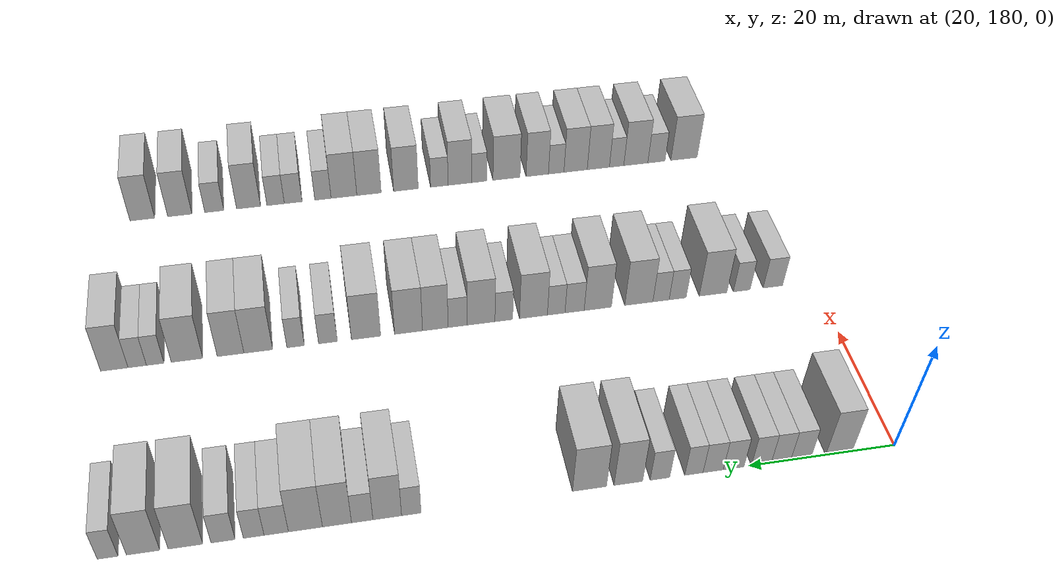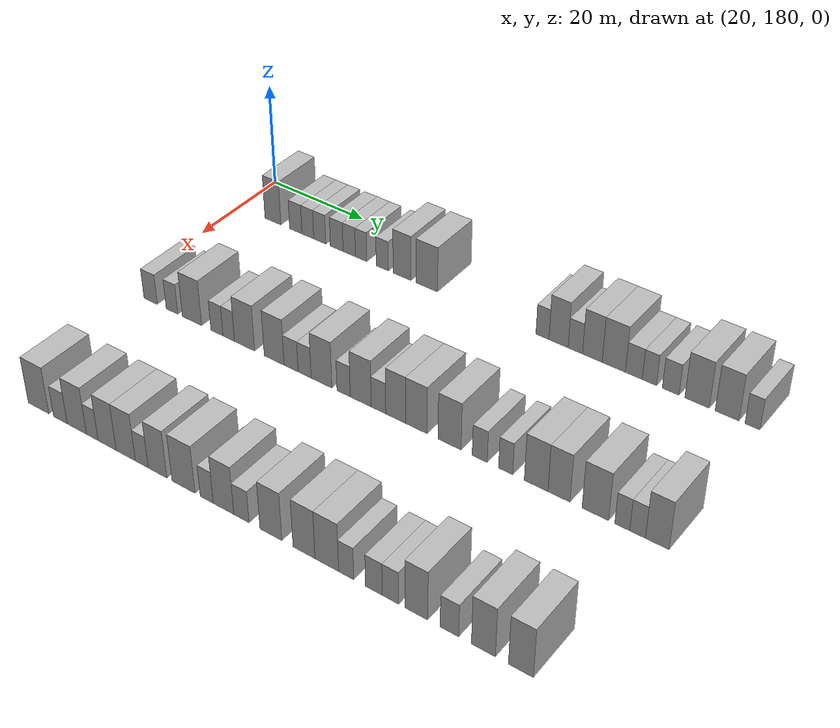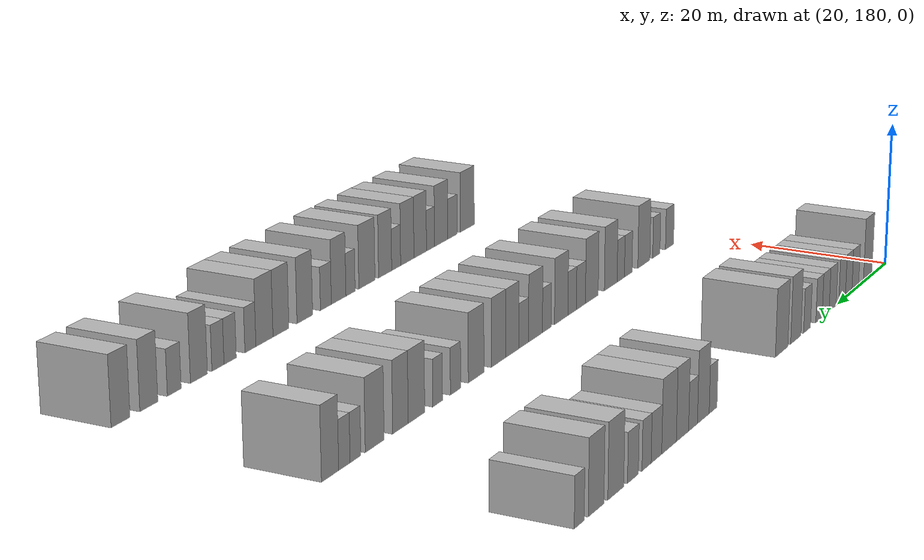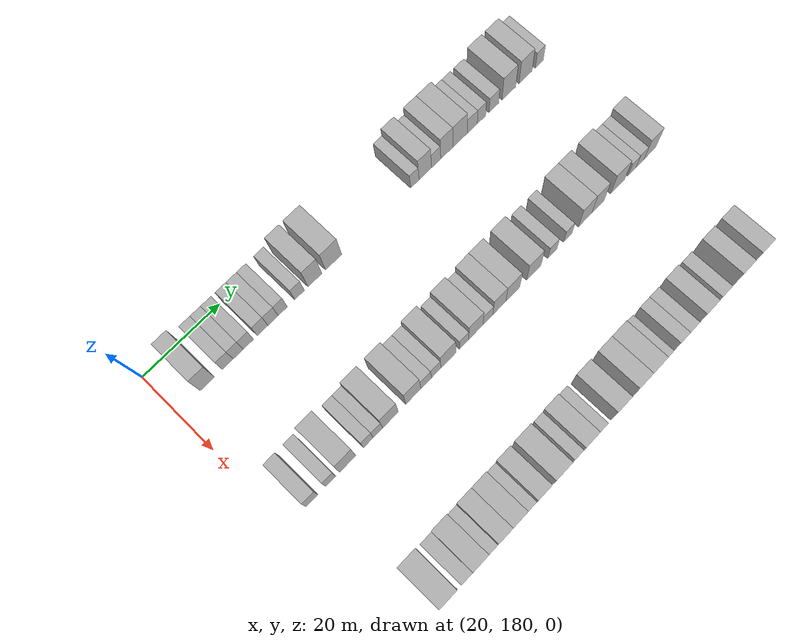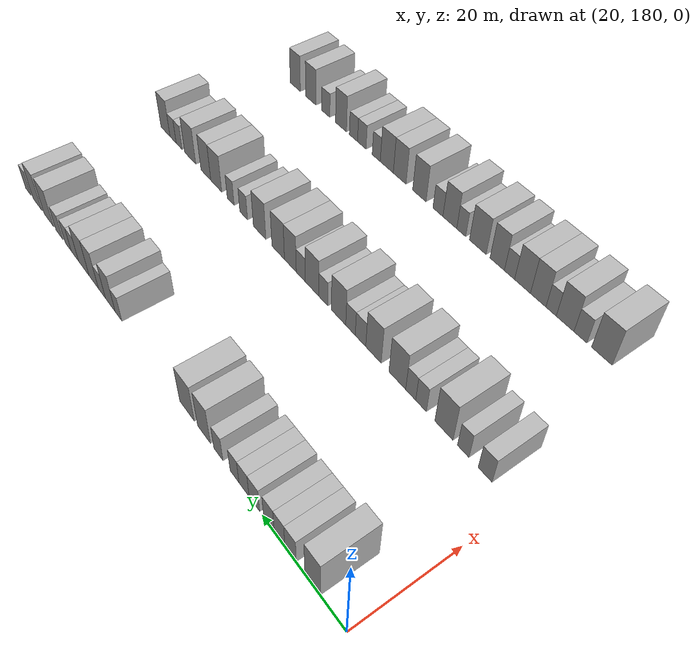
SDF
<sdf version="1.6">
 <world name="default">
  <model name="building_114">
   <static>1</static>
   <pose>25.0000 187.7259 0 0.000000 0.000000 0.000000</pose>
   <link name="link">
    <pose>0 0 4.50 0 0 0</pose>
    <collision name="collision"><geometry><box><size>10.0000 3.6436 9.0000</size></box></geometry></collision>
    <visual name="visual">
     <cast_shadows>0</cast_shadows>
     <geometry><box><size>10.0000 3.6436 9.0000</size></box></geometry>
     <material>
      <script>
       <uri>model://HANNAS_wall/materials/scripts</uri>
       <uri>model://HANNAS_wall/materials/textures</uri>
       <name>vrc/HANNAS_wall</name>
      </script>
     </material>
    </visual>
   </link>
  </model>
  <model name="building_115">
   <static>1</static>
   <pose>25.0000 192.9375 0 0.000000 0.000000 0.000000</pose>
   <link name="link">
    <pose>0 0 3.00 0 0 0</pose>
    <collision name="collision"><geometry><box><size>10.0000 2.7795 6.0000</size></box></geometry></collision>
    <visual name="visual">
     <cast_shadows>0</cast_shadows>
     <geometry><box><size>10.0000 2.7795 6.0000</size></box></geometry>
     <material>
      <script>
       <uri>model://HANNAS_wall/materials/scripts</uri>
       <uri>model://HANNAS_wall/materials/textures</uri>
       <name>vrc/HANNAS_wall</name>
      </script>
     </material>
    </visual>
   </link>
  </model>
  <model name="building_116">
   <static>1</static>
   <pose>25.0000 195.6456 0 0.000000 0.000000 0.000000</pose>
   <link name="link">
    <pose>0 0 3.00 0 0 0</pose>
    <collision name="collision"><geometry><box><size>10.0000 2.6369 6.0000</size></box></geometry></collision>
    <visual name="visual">
     <cast_shadows>0</cast_shadows>
     <geometry><box><size>10.0000 2.6369 6.0000</size></box></geometry>
     <material>
      <script>
       <uri>model://HANNAS_wall/materials/scripts</uri>
       <uri>model://HANNAS_wall/materials/textures</uri>
       <name>vrc/HANNAS_wall</name>
      </script>
     </material>
    </visual>
   </link>
  </model>
  <model name="building_117">
   <static>1</static>
   <pose>25.0000 198.3104 0 0.000000 0.000000 0.000000</pose>
   <link name="link">
    <pose>0 0 3.00 0 0 0</pose>
    <collision name="collision"><geometry><box><size>10.0000 2.6927 6.0000</size></box></geometry></collision>
    <visual name="visual">
     <cast_shadows>0</cast_shadows>
     <geometry><box><size>10.0000 2.6927 6.0000</size></box></geometry>
     <material>
      <script>
       <uri>model://HANNAS_wall/materials/scripts</uri>
       <uri>model://HANNAS_wall/materials/textures</uri>
       <name>vrc/HANNAS_wall</name>
      </script>
     </material>
    </visual>
   </link>
  </model>
  <model name="building_118">
   <static>1</static>
   <pose>25.0000 202.0530 0 0.000000 0.000000 0.000000</pose>
   <link name="link">
    <pose>0 0 3.00 0 0 0</pose>
    <collision name="collision"><geometry><box><size>10.0000 2.7925 6.0000</size></box></geometry></collision>
    <visual name="visual">
     <cast_shadows>0</cast_shadows>
     <geometry><box><size>10.0000 2.7925 6.0000</size></box></geometry>
     <material>
      <script>
       <uri>model://HANNAS_wall/materials/scripts</uri>
       <uri>model://HANNAS_wall/materials/textures</uri>
       <name>vrc/HANNAS_wall</name>
      </script>
     </material>
    </visual>
   </link>
  </model>
  <model name="building_119">
   <static>1</static>
   <pose>25.0000 204.8026 0 0.000000 0.000000 0.000000</pose>
   <link name="link">
    <pose>0 0 3.00 0 0 0</pose>
    <collision name="collision"><geometry><box><size>10.0000 2.7067 6.0000</size></box></geometry></collision>
    <visual name="visual">
     <cast_shadows>0</cast_shadows>
     <geometry><box><size>10.0000 2.7067 6.0000</size></box></geometry>
     <material>
      <script>
       <uri>model://HANNAS_wall/materials/scripts</uri>
       <uri>model://HANNAS_wall/materials/textures</uri>
       <name>vrc/HANNAS_wall</name>
      </script>
     </material>
    </visual>
   </link>
  </model>
  <model name="building_120">
   <static>1</static>
   <pose>25.0000 207.3754 0 0.000000 0.000000 0.000000</pose>
   <link name="link">
    <pose>0 0 3.00 0 0 0</pose>
    <collision name="collision"><geometry><box><size>10.0000 2.4390 6.0000</size></box></geometry></collision>
    <visual name="visual">
     <cast_shadows>0</cast_shadows>
     <geometry><box><size>10.0000 2.4390 6.0000</size></box></geometry>
     <material>
      <script>
       <uri>model://HANNAS_wall/materials/scripts</uri>
       <uri>model://HANNAS_wall/materials/textures</uri>
       <name>vrc/HANNAS_wall</name>
      </script>
     </material>
    </visual>
   </link>
  </model>
  <model name="building_121">
   <static>1</static>
   <pose>25.0000 211.8889 0 0.000000 0.000000 0.000000</pose>
   <link name="link">
    <pose>0 0 3.00 0 0 0</pose>
    <collision name="collision"><geometry><box><size>10.0000 2.5881 6.0000</size></box></geometry></collision>
    <visual name="visual">
     <cast_shadows>0</cast_shadows>
     <geometry><box><size>10.0000 2.5881 6.0000</size></box></geometry>
     <material>
      <script>
       <uri>model://HANNAS_wall/materials/scripts</uri>
       <uri>model://HANNAS_wall/materials/textures</uri>
       <name>vrc/HANNAS_wall</name>
      </script>
     </material>
    </visual>
   </link>
  </model>
  <model name="building_122">
   <static>1</static>
   <pose>25.0000 216.0663 0 0.000000 0.000000 0.000000</pose>
   <link name="link">
    <pose>0 0 4.50 0 0 0</pose>
    <collision name="collision"><geometry><box><size>10.0000 3.7667 9.0000</size></box></geometry></collision>
    <visual name="visual">
     <cast_shadows>0</cast_shadows>
     <geometry><box><size>10.0000 3.7667 9.0000</size></box></geometry>
     <material>
      <script>
       <uri>model://HANNAS_wall/materials/scripts</uri>
       <uri>model://HANNAS_wall/materials/textures</uri>
       <name>vrc/HANNAS_wall</name>
      </script>
     </material>
    </visual>
   </link>
  </model>
  <model name="building_123">
   <static>1</static>
   <pose>25.0000 221.1724 0 0.000000 0.000000 0.000000</pose>
   <link name="link">
    <pose>0 0 4.50 0 0 0</pose>
    <collision name="collision"><geometry><box><size>10.0000 4.4453 9.0000</size></box></geometry></collision>
    <visual name="visual">
     <cast_shadows>0</cast_shadows>
     <geometry><box><size>10.0000 4.4453 9.0000</size></box></geometry>
     <material>
      <script>
       <uri>model://HANNAS_wall/materials/scripts</uri>
       <uri>model://HANNAS_wall/materials/textures</uri>
       <name>vrc/HANNAS_wall</name>
      </script>
     </material>
    </visual>
   </link>
  </model>
  <model name="building_124">
   <static>1</static>
   <pose>25.0000 244.0759 0 0.000000 0.000000 0.000000</pose>
   <link name="link">
    <pose>0 0 3.00 0 0 0</pose>
    <collision name="collision"><geometry><box><size>10.0000 2.4540 6.0000</size></box></geometry></collision>
    <visual name="visual">
     <cast_shadows>0</cast_shadows>
     <geometry><box><size>10.0000 2.4540 6.0000</size></box></geometry>
     <material>
      <script>
       <uri>model://HANNAS_wall/materials/scripts</uri>
       <uri>model://HANNAS_wall/materials/textures</uri>
       <name>vrc/HANNAS_wall</name>
      </script>
     </material>
    </visual>
   </link>
  </model>
  <model name="building_125">
   <static>1</static>
   <pose>25.0000 247.1043 0 0.000000 0.000000 0.000000</pose>
   <link name="link">
    <pose>0 0 4.50 0 0 0</pose>
    <collision name="collision"><geometry><box><size>10.0000 3.6028 9.0000</size></box></geometry></collision>
    <visual name="visual">
     <cast_shadows>0</cast_shadows>
     <geometry><box><size>10.0000 3.6028 9.0000</size></box></geometry>
     <material>
      <script>
       <uri>model://HANNAS_wall/materials/scripts</uri>
       <uri>model://HANNAS_wall/materials/textures</uri>
       <name>vrc/HANNAS_wall</name>
      </script>
     </material>
    </visual>
   </link>
  </model>
  <model name="building_126">
   <static>1</static>
   <pose>25.0000 250.2439 0 0.000000 0.000000 0.000000</pose>
   <link name="link">
    <pose>0 0 3.00 0 0 0</pose>
    <collision name="collision"><geometry><box><size>10.0000 2.6763 6.0000</size></box></geometry></collision>
    <visual name="visual">
     <cast_shadows>0</cast_shadows>
     <geometry><box><size>10.0000 2.6763 6.0000</size></box></geometry>
     <material>
      <script>
       <uri>model://HANNAS_wall/materials/scripts</uri>
       <uri>model://HANNAS_wall/materials/textures</uri>
       <name>vrc/HANNAS_wall</name>
      </script>
     </material>
    </visual>
   </link>
  </model>
  <model name="building_127">
   <static>1</static>
   <pose>25.0000 253.3932 0 0.000000 0.000000 0.000000</pose>
   <link name="link">
    <pose>0 0 4.50 0 0 0</pose>
    <collision name="collision"><geometry><box><size>10.0000 3.6223 9.0000</size></box></geometry></collision>
    <visual name="visual">
     <cast_shadows>0</cast_shadows>
     <geometry><box><size>10.0000 3.6223 9.0000</size></box></geometry>
     <material>
      <script>
       <uri>model://HANNAS_wall/materials/scripts</uri>
       <uri>model://HANNAS_wall/materials/textures</uri>
       <name>vrc/HANNAS_wall</name>
      </script>
     </material>
    </visual>
   </link>
  </model>
  <model name="building_128">
   <static>1</static>
   <pose>25.0000 257.3142 0 0.000000 0.000000 0.000000</pose>
   <link name="link">
    <pose>0 0 4.50 0 0 0</pose>
    <collision name="collision"><geometry><box><size>10.0000 4.2197 9.0000</size></box></geometry></collision>
    <visual name="visual">
     <cast_shadows>0</cast_shadows>
     <geometry><box><size>10.0000 4.2197 9.0000</size></box></geometry>
     <material>
      <script>
       <uri>model://HANNAS_wall/materials/scripts</uri>
       <uri>model://HANNAS_wall/materials/textures</uri>
       <name>vrc/HANNAS_wall</name>
      </script>
     </material>
    </visual>
   </link>
  </model>
  <model name="building_129">
   <static>1</static>
   <pose>25.0000 260.9236 0 0.000000 0.000000 0.000000</pose>
   <link name="link">
    <pose>0 0 3.00 0 0 0</pose>
    <collision name="collision"><geometry><box><size>10.0000 2.9992 6.0000</size></box></geometry></collision>
    <visual name="visual">
     <cast_shadows>0</cast_shadows>
     <geometry><box><size>10.0000 2.9992 6.0000</size></box></geometry>
     <material>
      <script>
       <uri>model://HANNAS_wall/materials/scripts</uri>
       <uri>model://HANNAS_wall/materials/textures</uri>
       <name>vrc/HANNAS_wall</name>
      </script>
     </material>
    </visual>
   </link>
  </model>
  <model name="building_130">
   <static>1</static>
   <pose>25.0000 263.6955 0 0.000000 0.000000 0.000000</pose>
   <link name="link">
    <pose>0 0 3.00 0 0 0</pose>
    <collision name="collision"><geometry><box><size>10.0000 2.5446 6.0000</size></box></geometry></collision>
    <visual name="visual">
     <cast_shadows>0</cast_shadows>
     <geometry><box><size>10.0000 2.5446 6.0000</size></box></geometry>
     <material>
      <script>
       <uri>model://HANNAS_wall/materials/scripts</uri>
       <uri>model://HANNAS_wall/materials/textures</uri>
       <name>vrc/HANNAS_wall</name>
      </script>
     </material>
    </visual>
   </link>
  </model>
  <model name="building_131">
   <static>1</static>
   <pose>25.0000 267.4405 0 0.000000 0.000000 0.000000</pose>
   <link name="link">
    <pose>0 0 3.00 0 0 0</pose>
    <collision name="collision"><geometry><box><size>10.0000 2.9455 6.0000</size></box></geometry></collision>
    <visual name="visual">
     <cast_shadows>0</cast_shadows>
     <geometry><box><size>10.0000 2.9455 6.0000</size></box></geometry>
     <material>
      <script>
       <uri>model://HANNAS_wall/materials/scripts</uri>
       <uri>model://HANNAS_wall/materials/textures</uri>
       <name>vrc/HANNAS_wall</name>
      </script>
     </material>
    </visual>
   </link>
  </model>
  <model name="building_132">
   <static>1</static>
   <pose>25.0000 272.0129 0 0.000000 0.000000 0.000000</pose>
   <link name="link">
    <pose>0 0 4.50 0 0 0</pose>
    <collision name="collision"><geometry><box><size>10.0000 4.1993 9.0000</size></box></geometry></collision>
    <visual name="visual">
     <cast_shadows>0</cast_shadows>
     <geometry><box><size>10.0000 4.1993 9.0000</size></box></geometry>
     <material>
      <script>
       <uri>model://HANNAS_wall/materials/scripts</uri>
       <uri>model://HANNAS_wall/materials/textures</uri>
       <name>vrc/HANNAS_wall</name>
      </script>
     </material>
    </visual>
   </link>
  </model>
  <model name="building_133">
   <static>1</static>
   <pose>25.0000 277.1240 0 0.000000 0.000000 0.000000</pose>
   <link name="link">
    <pose>0 0 4.50 0 0 0</pose>
    <collision name="collision"><geometry><box><size>10.0000 4.0227 9.0000</size></box></geometry></collision>
    <visual name="visual">
     <cast_shadows>0</cast_shadows>
     <geometry><box><size>10.0000 4.0227 9.0000</size></box></geometry>
     <material>
      <script>
       <uri>model://HANNAS_wall/materials/scripts</uri>
       <uri>model://HANNAS_wall/materials/textures</uri>
       <name>vrc/HANNAS_wall</name>
      </script>
     </material>
    </visual>
   </link>
  </model>
  <model name="building_134">
   <static>1</static>
   <pose>25.0000 281.3770 0 0.000000 0.000000 0.000000</pose>
   <link name="link">
    <pose>0 0 3.00 0 0 0</pose>
    <collision name="collision"><geometry><box><size>10.0000 2.4832 6.0000</size></box></geometry></collision>
    <visual name="visual">
     <cast_shadows>0</cast_shadows>
     <geometry><box><size>10.0000 2.4832 6.0000</size></box></geometry>
     <material>
      <script>
       <uri>model://HANNAS_wall/materials/scripts</uri>
       <uri>model://HANNAS_wall/materials/textures</uri>
       <name>vrc/HANNAS_wall</name>
      </script>
     </material>
    </visual>
   </link>
  </model>
  <model name="building_251">
   <static>1</static>
   <pose>55.0000 186.3137 0 0.000000 0.000000 0.000000</pose>
   <link name="link">
    <pose>0 0 3.00 0 0 0</pose>
    <collision name="collision"><geometry><box><size>10.0000 2.9896 6.0000</size></box></geometry></collision>
    <visual name="visual">
     <cast_shadows>0</cast_shadows>
     <geometry><box><size>10.0000 2.9896 6.0000</size></box></geometry>
     <material>
      <script>
       <uri>model://HANNAS_wall/materials/scripts</uri>
       <uri>model://HANNAS_wall/materials/textures</uri>
       <name>vrc/HANNAS_wall</name>
      </script>
     </material>
    </visual>
   </link>
  </model>
  <model name="building_252">
   <static>1</static>
   <pose>55.0000 191.0948 0 0.000000 0.000000 0.000000</pose>
   <link name="link">
    <pose>0 0 3.00 0 0 0</pose>
    <collision name="collision"><geometry><box><size>10.0000 2.5726 6.0000</size></box></geometry></collision>
    <visual name="visual">
     <cast_shadows>0</cast_shadows>
     <geometry><box><size>10.0000 2.5726 6.0000</size></box></geometry>
     <material>
      <script>
       <uri>model://HANNAS_wall/materials/scripts</uri>
       <uri>model://HANNAS_wall/materials/textures</uri>
       <name>vrc/HANNAS_wall</name>
      </script>
     </material>
    </visual>
   </link>
  </model>
  <model name="building_253">
   <static>1</static>
   <pose>55.0000 195.4832 0 0.000000 0.000000 0.000000</pose>
   <link name="link">
    <pose>0 0 4.50 0 0 0</pose>
    <collision name="collision"><geometry><box><size>10.0000 4.2041 9.0000</size></box></geometry></collision>
    <visual name="visual">
     <cast_shadows>0</cast_shadows>
     <geometry><box><size>10.0000 4.2041 9.0000</size></box></geometry>
     <material>
      <script>
       <uri>model://HANNAS_wall/materials/scripts</uri>
       <uri>model://HANNAS_wall/materials/textures</uri>
       <name>vrc/HANNAS_wall</name>
      </script>
     </material>
    </visual>
   </link>
  </model>
  <model name="building_254">
   <static>1</static>
   <pose>55.0000 200.8691 0 0.000000 0.000000 0.000000</pose>
   <link name="link">
    <pose>0 0 3.00 0 0 0</pose>
    <collision name="collision"><geometry><box><size>10.0000 2.5677 6.0000</size></box></geometry></collision>
    <visual name="visual">
     <cast_shadows>0</cast_shadows>
     <geometry><box><size>10.0000 2.5677 6.0000</size></box></geometry>
     <material>
      <script>
       <uri>model://HANNAS_wall/materials/scripts</uri>
       <uri>model://HANNAS_wall/materials/textures</uri>
       <name>vrc/HANNAS_wall</name>
      </script>
     </material>
    </visual>
   </link>
  </model>
  <model name="building_255">
   <static>1</static>
   <pose>55.0000 203.3830 0 0.000000 0.000000 0.000000</pose>
   <link name="link">
    <pose>0 0 3.00 0 0 0</pose>
    <collision name="collision"><geometry><box><size>10.0000 2.4601 6.0000</size></box></geometry></collision>
    <visual name="visual">
     <cast_shadows>0</cast_shadows>
     <geometry><box><size>10.0000 2.4601 6.0000</size></box></geometry>
     <material>
      <script>
       <uri>model://HANNAS_wall/materials/scripts</uri>
       <uri>model://HANNAS_wall/materials/textures</uri>
       <name>vrc/HANNAS_wall</name>
      </script>
     </material>
    </visual>
   </link>
  </model>
  <model name="building_256">
   <static>1</static>
   <pose>55.0000 206.7204 0 0.000000 0.000000 0.000000</pose>
   <link name="link">
    <pose>0 0 4.50 0 0 0</pose>
    <collision name="collision"><geometry><box><size>10.0000 4.2148 9.0000</size></box></geometry></collision>
    <visual name="visual">
     <cast_shadows>0</cast_shadows>
     <geometry><box><size>10.0000 4.2148 9.0000</size></box></geometry>
     <material>
      <script>
       <uri>model://HANNAS_wall/materials/scripts</uri>
       <uri>model://HANNAS_wall/materials/textures</uri>
       <name>vrc/HANNAS_wall</name>
      </script>
     </material>
    </visual>
   </link>
  </model>
  <model name="building_257">
   <static>1</static>
   <pose>55.0000 212.8641 0 0.000000 0.000000 0.000000</pose>
   <link name="link">
    <pose>0 0 4.50 0 0 0</pose>
    <collision name="collision"><geometry><box><size>10.0000 4.0726 9.0000</size></box></geometry></collision>
    <visual name="visual">
     <cast_shadows>0</cast_shadows>
     <geometry><box><size>10.0000 4.0726 9.0000</size></box></geometry>
     <material>
      <script>
       <uri>model://HANNAS_wall/materials/scripts</uri>
       <uri>model://HANNAS_wall/materials/textures</uri>
       <name>vrc/HANNAS_wall</name>
      </script>
     </material>
    </visual>
   </link>
  </model>
  <model name="building_258">
   <static>1</static>
   <pose>55.0000 216.3217 0 0.000000 0.000000 0.000000</pose>
   <link name="link">
    <pose>0 0 3.00 0 0 0</pose>
    <collision name="collision"><geometry><box><size>10.0000 2.8425 6.0000</size></box></geometry></collision>
    <visual name="visual">
     <cast_shadows>0</cast_shadows>
     <geometry><box><size>10.0000 2.8425 6.0000</size></box></geometry>
     <material>
      <script>
       <uri>model://HANNAS_wall/materials/scripts</uri>
       <uri>model://HANNAS_wall/materials/textures</uri>
       <name>vrc/HANNAS_wall</name>
      </script>
     </material>
    </visual>
   </link>
  </model>
  <model name="building_259">
   <static>1</static>
   <pose>55.0000 219.0456 0 0.000000 0.000000 0.000000</pose>
   <link name="link">
    <pose>0 0 3.00 0 0 0</pose>
    <collision name="collision"><geometry><box><size>10.0000 2.6054 6.0000</size></box></geometry></collision>
    <visual name="visual">
     <cast_shadows>0</cast_shadows>
     <geometry><box><size>10.0000 2.6054 6.0000</size></box></geometry>
     <material>
      <script>
       <uri>model://HANNAS_wall/materials/scripts</uri>
       <uri>model://HANNAS_wall/materials/textures</uri>
       <name>vrc/HANNAS_wall</name>
      </script>
     </material>
    </visual>
   </link>
  </model>
  <model name="building_260">
   <static>1</static>
   <pose>55.0000 222.4027 0 0.000000 0.000000 0.000000</pose>
   <link name="link">
    <pose>0 0 4.50 0 0 0</pose>
    <collision name="collision"><geometry><box><size>10.0000 4.1087 9.0000</size></box></geometry></collision>
    <visual name="visual">
     <cast_shadows>0</cast_shadows>
     <geometry><box><size>10.0000 4.1087 9.0000</size></box></geometry>
     <material>
      <script>
       <uri>model://HANNAS_wall/materials/scripts</uri>
       <uri>model://HANNAS_wall/materials/textures</uri>
       <name>vrc/HANNAS_wall</name>
      </script>
     </material>
    </visual>
   </link>
  </model>
  <model name="building_261">
   <static>1</static>
   <pose>55.0000 226.7514 0 0.000000 0.000000 0.000000</pose>
   <link name="link">
    <pose>0 0 3.00 0 0 0</pose>
    <collision name="collision"><geometry><box><size>10.0000 2.5887 6.0000</size></box></geometry></collision>
    <visual name="visual">
     <cast_shadows>0</cast_shadows>
     <geometry><box><size>10.0000 2.5887 6.0000</size></box></geometry>
     <material>
      <script>
       <uri>model://HANNAS_wall/materials/scripts</uri>
       <uri>model://HANNAS_wall/materials/textures</uri>
       <name>vrc/HANNAS_wall</name>
      </script>
     </material>
    </visual>
   </link>
  </model>
  <model name="building_262">
   <static>1</static>
   <pose>55.0000 230.0673 0 0.000000 0.000000 0.000000</pose>
   <link name="link">
    <pose>0 0 4.50 0 0 0</pose>
    <collision name="collision"><geometry><box><size>10.0000 4.0432 9.0000</size></box></geometry></collision>
    <visual name="visual">
     <cast_shadows>0</cast_shadows>
     <geometry><box><size>10.0000 4.0432 9.0000</size></box></geometry>
     <material>
      <script>
       <uri>model://HANNAS_wall/materials/scripts</uri>
       <uri>model://HANNAS_wall/materials/textures</uri>
       <name>vrc/HANNAS_wall</name>
      </script>
     </material>
    </visual>
   </link>
  </model>
  <model name="building_263">
   <static>1</static>
   <pose>55.0000 233.4736 0 0.000000 0.000000 0.000000</pose>
   <link name="link">
    <pose>0 0 3.00 0 0 0</pose>
    <collision name="collision"><geometry><box><size>10.0000 2.7694 6.0000</size></box></geometry></collision>
    <visual name="visual">
     <cast_shadows>0</cast_shadows>
     <geometry><box><size>10.0000 2.7694 6.0000</size></box></geometry>
     <material>
      <script>
       <uri>model://HANNAS_wall/materials/scripts</uri>
       <uri>model://HANNAS_wall/materials/textures</uri>
       <name>vrc/HANNAS_wall</name>
      </script>
     </material>
    </visual>
   </link>
  </model>
  <model name="building_264">
   <static>1</static>
   <pose>55.0000 236.7039 0 0.000000 0.000000 0.000000</pose>
   <link name="link">
    <pose>0 0 4.50 0 0 0</pose>
    <collision name="collision"><geometry><box><size>10.0000 3.6912 9.0000</size></box></geometry></collision>
    <visual name="visual">
     <cast_shadows>0</cast_shadows>
     <geometry><box><size>10.0000 3.6912 9.0000</size></box></geometry>
     <material>
      <script>
       <uri>model://HANNAS_wall/materials/scripts</uri>
       <uri>model://HANNAS_wall/materials/textures</uri>
       <name>vrc/HANNAS_wall</name>
      </script>
     </material>
    </visual>
   </link>
  </model>
  <model name="building_265">
   <static>1</static>
   <pose>55.0000 240.5541 0 0.000000 0.000000 0.000000</pose>
   <link name="link">
    <pose>0 0 4.50 0 0 0</pose>
    <collision name="collision"><geometry><box><size>10.0000 4.0091 9.0000</size></box></geometry></collision>
    <visual name="visual">
     <cast_shadows>0</cast_shadows>
     <geometry><box><size>10.0000 4.0091 9.0000</size></box></geometry>
     <material>
      <script>
       <uri>model://HANNAS_wall/materials/scripts</uri>
       <uri>model://HANNAS_wall/materials/textures</uri>
       <name>vrc/HANNAS_wall</name>
      </script>
     </material>
    </visual>
   </link>
  </model>
  <model name="building_266">
   <static>1</static>
   <pose>55.0000 246.6406 0 0.000000 0.000000 0.000000</pose>
   <link name="link">
    <pose>0 0 4.50 0 0 0</pose>
    <collision name="collision"><geometry><box><size>10.0000 4.1638 9.0000</size></box></geometry></collision>
    <visual name="visual">
     <cast_shadows>0</cast_shadows>
     <geometry><box><size>10.0000 4.1638 9.0000</size></box></geometry>
     <material>
      <script>
       <uri>model://HANNAS_wall/materials/scripts</uri>
       <uri>model://HANNAS_wall/materials/textures</uri>
       <name>vrc/HANNAS_wall</name>
      </script>
     </material>
    </visual>
   </link>
  </model>
  <model name="building_267">
   <static>1</static>
   <pose>55.0000 252.0537 0 0.000000 0.000000 0.000000</pose>
   <link name="link">
    <pose>0 0 3.00 0 0 0</pose>
    <collision name="collision"><geometry><box><size>10.0000 2.6624 6.0000</size></box></geometry></collision>
    <visual name="visual">
     <cast_shadows>0</cast_shadows>
     <geometry><box><size>10.0000 2.6624 6.0000</size></box></geometry>
     <material>
      <script>
       <uri>model://HANNAS_wall/materials/scripts</uri>
       <uri>model://HANNAS_wall/materials/textures</uri>
       <name>vrc/HANNAS_wall</name>
      </script>
     </material>
    </visual>
   </link>
  </model>
  <model name="building_268">
   <static>1</static>
   <pose>55.0000 256.6133 0 0.000000 0.000000 0.000000</pose>
   <link name="link">
    <pose>0 0 3.00 0 0 0</pose>
    <collision name="collision"><geometry><box><size>10.0000 2.4568 6.0000</size></box></geometry></collision>
    <visual name="visual">
     <cast_shadows>0</cast_shadows>
     <geometry><box><size>10.0000 2.4568 6.0000</size></box></geometry>
     <material>
      <script>
       <uri>model://HANNAS_wall/materials/scripts</uri>
       <uri>model://HANNAS_wall/materials/textures</uri>
       <name>vrc/HANNAS_wall</name>
      </script>
     </material>
    </visual>
   </link>
  </model>
  <model name="building_269">
   <static>1</static>
   <pose>55.0000 261.8523 0 0.000000 0.000000 0.000000</pose>
   <link name="link">
    <pose>0 0 4.50 0 0 0</pose>
    <collision name="collision"><geometry><box><size>10.0000 4.0214 9.0000</size></box></geometry></collision>
    <visual name="visual">
     <cast_shadows>0</cast_shadows>
     <geometry><box><size>10.0000 4.0214 9.0000</size></box></geometry>
     <material>
      <script>
       <uri>model://HANNAS_wall/materials/scripts</uri>
       <uri>model://HANNAS_wall/materials/textures</uri>
       <name>vrc/HANNAS_wall</name>
      </script>
     </material>
    </visual>
   </link>
  </model>
  <model name="building_270">
   <static>1</static>
   <pose>55.0000 265.7192 0 0.000000 0.000000 0.000000</pose>
   <link name="link">
    <pose>0 0 4.50 0 0 0</pose>
    <collision name="collision"><geometry><box><size>10.0000 3.7124 9.0000</size></box></geometry></collision>
    <visual name="visual">
     <cast_shadows>0</cast_shadows>
     <geometry><box><size>10.0000 3.7124 9.0000</size></box></geometry>
     <material>
      <script>
       <uri>model://HANNAS_wall/materials/scripts</uri>
       <uri>model://HANNAS_wall/materials/textures</uri>
       <name>vrc/HANNAS_wall</name>
      </script>
     </material>
    </visual>
   </link>
  </model>
  <model name="building_271">
   <static>1</static>
   <pose>55.0000 271.7484 0 0.000000 0.000000 0.000000</pose>
   <link name="link">
    <pose>0 0 4.50 0 0 0</pose>
    <collision name="collision"><geometry><box><size>10.0000 4.3459 9.0000</size></box></geometry></collision>
    <visual name="visual">
     <cast_shadows>0</cast_shadows>
     <geometry><box><size>10.0000 4.3459 9.0000</size></box></geometry>
     <material>
      <script>
       <uri>model://HANNAS_wall/materials/scripts</uri>
       <uri>model://HANNAS_wall/materials/textures</uri>
       <name>vrc/HANNAS_wall</name>
      </script>
     </material>
    </visual>
   </link>
  </model>
  <model name="building_272">
   <static>1</static>
   <pose>55.0000 276.1239 0 0.000000 0.000000 0.000000</pose>
   <link name="link">
    <pose>0 0 3.00 0 0 0</pose>
    <collision name="collision"><geometry><box><size>10.0000 2.4051 6.0000</size></box></geometry></collision>
    <visual name="visual">
     <cast_shadows>0</cast_shadows>
     <geometry><box><size>10.0000 2.4051 6.0000</size></box></geometry>
     <material>
      <script>
       <uri>model://HANNAS_wall/materials/scripts</uri>
       <uri>model://HANNAS_wall/materials/textures</uri>
       <name>vrc/HANNAS_wall</name>
      </script>
     </material>
    </visual>
   </link>
  </model>
  <model name="building_273">
   <static>1</static>
   <pose>55.0000 278.5824 0 0.000000 0.000000 0.000000</pose>
   <link name="link">
    <pose>0 0 3.00 0 0 0</pose>
    <collision name="collision"><geometry><box><size>10.0000 2.5118 6.0000</size></box></geometry></collision>
    <visual name="visual">
     <cast_shadows>0</cast_shadows>
     <geometry><box><size>10.0000 2.5118 6.0000</size></box></geometry>
     <material>
      <script>
       <uri>model://HANNAS_wall/materials/scripts</uri>
       <uri>model://HANNAS_wall/materials/textures</uri>
       <name>vrc/HANNAS_wall</name>
      </script>
     </material>
    </visual>
   </link>
  </model>
  <model name="building_274">
   <static>1</static>
   <pose>55.0000 281.7057 0 0.000000 0.000000 0.000000</pose>
   <link name="link">
    <pose>0 0 4.50 0 0 0</pose>
    <collision name="collision"><geometry><box><size>10.0000 3.7348 9.0000</size></box></geometry></collision>
    <visual name="visual">
     <cast_shadows>0</cast_shadows>
     <geometry><box><size>10.0000 3.7348 9.0000</size></box></geometry>
     <material>
      <script>
       <uri>model://HANNAS_wall/materials/scripts</uri>
       <uri>model://HANNAS_wall/materials/textures</uri>
       <name>vrc/HANNAS_wall</name>
      </script>
     </material>
    </visual>
   </link>
  </model>
  <model name="building_382">
   <static>1</static>
   <pose>85.0000 191.1152 0 0.000000 0.000000 0.000000</pose>
   <link name="link">
    <pose>0 0 4.50 0 0 0</pose>
    <collision name="collision"><geometry><box><size>10.0000 4.4610 9.0000</size></box></geometry></collision>
    <visual name="visual">
     <cast_shadows>0</cast_shadows>
     <geometry><box><size>10.0000 4.4610 9.0000</size></box></geometry>
     <material>
      <script>
       <uri>model://HANNAS_wall/materials/scripts</uri>
       <uri>model://HANNAS_wall/materials/textures</uri>
       <name>vrc/HANNAS_wall</name>
      </script>
     </material>
    </visual>
   </link>
  </model>
  <model name="building_383">
   <static>1</static>
   <pose>85.0000 195.7938 0 0.000000 0.000000 0.000000</pose>
   <link name="link">
    <pose>0 0 3.00 0 0 0</pose>
    <collision name="collision"><geometry><box><size>10.0000 2.8961 6.0000</size></box></geometry></collision>
    <visual name="visual">
     <cast_shadows>0</cast_shadows>
     <geometry><box><size>10.0000 2.8961 6.0000</size></box></geometry>
     <material>
      <script>
       <uri>model://HANNAS_wall/materials/scripts</uri>
       <uri>model://HANNAS_wall/materials/textures</uri>
       <name>vrc/HANNAS_wall</name>
      </script>
     </material>
    </visual>
   </link>
  </model>
  <model name="building_384">
   <static>1</static>
   <pose>85.0000 199.2655 0 0.000000 0.000000 0.000000</pose>
   <link name="link">
    <pose>0 0 4.50 0 0 0</pose>
    <collision name="collision"><geometry><box><size>10.0000 4.0473 9.0000</size></box></geometry></collision>
    <visual name="visual">
     <cast_shadows>0</cast_shadows>
     <geometry><box><size>10.0000 4.0473 9.0000</size></box></geometry>
     <material>
      <script>
       <uri>model://HANNAS_wall/materials/scripts</uri>
       <uri>model://HANNAS_wall/materials/textures</uri>
       <name>vrc/HANNAS_wall</name>
      </script>
     </material>
    </visual>
   </link>
  </model>
  <model name="building_385">
   <static>1</static>
   <pose>85.0000 202.4969 0 0.000000 0.000000 0.000000</pose>
   <link name="link">
    <pose>0 0 3.00 0 0 0</pose>
    <collision name="collision"><geometry><box><size>10.0000 2.4155 6.0000</size></box></geometry></collision>
    <visual name="visual">
     <cast_shadows>0</cast_shadows>
     <geometry><box><size>10.0000 2.4155 6.0000</size></box></geometry>
     <material>
      <script>
       <uri>model://HANNAS_wall/materials/scripts</uri>
       <uri>model://HANNAS_wall/materials/textures</uri>
       <name>vrc/HANNAS_wall</name>
      </script>
     </material>
    </visual>
   </link>
  </model>
  <model name="building_386">
   <static>1</static>
   <pose>85.0000 205.5585 0 0.000000 0.000000 0.000000</pose>
   <link name="link">
    <pose>0 0 4.50 0 0 0</pose>
    <collision name="collision"><geometry><box><size>10.0000 3.7077 9.0000</size></box></geometry></collision>
    <visual name="visual">
     <cast_shadows>0</cast_shadows>
     <geometry><box><size>10.0000 3.7077 9.0000</size></box></geometry>
     <material>
      <script>
       <uri>model://HANNAS_wall/materials/scripts</uri>
       <uri>model://HANNAS_wall/materials/textures</uri>
       <name>vrc/HANNAS_wall</name>
      </script>
     </material>
    </visual>
   </link>
  </model>
  <model name="building_387">
   <static>1</static>
   <pose>85.0000 209.3518 0 0.000000 0.000000 0.000000</pose>
   <link name="link">
    <pose>0 0 4.50 0 0 0</pose>
    <collision name="collision"><geometry><box><size>10.0000 3.8789 9.0000</size></box></geometry></collision>
    <visual name="visual">
     <cast_shadows>0</cast_shadows>
     <geometry><box><size>10.0000 3.8789 9.0000</size></box></geometry>
     <material>
      <script>
       <uri>model://HANNAS_wall/materials/scripts</uri>
       <uri>model://HANNAS_wall/materials/textures</uri>
       <name>vrc/HANNAS_wall</name>
      </script>
     </material>
    </visual>
   </link>
  </model>
  <model name="building_388">
   <static>1</static>
   <pose>85.0000 212.5756 0 0.000000 0.000000 0.000000</pose>
   <link name="link">
    <pose>0 0 3.00 0 0 0</pose>
    <collision name="collision"><geometry><box><size>10.0000 2.5687 6.0000</size></box></geometry></collision>
    <visual name="visual">
     <cast_shadows>0</cast_shadows>
     <geometry><box><size>10.0000 2.5687 6.0000</size></box></geometry>
     <material>
      <script>
       <uri>model://HANNAS_wall/materials/scripts</uri>
       <uri>model://HANNAS_wall/materials/textures</uri>
       <name>vrc/HANNAS_wall</name>
      </script>
     </material>
    </visual>
   </link>
  </model>
  <model name="building_389">
   <static>1</static>
   <pose>85.0000 215.7059 0 0.000000 0.000000 0.000000</pose>
   <link name="link">
    <pose>0 0 4.50 0 0 0</pose>
    <collision name="collision"><geometry><box><size>10.0000 3.6921 9.0000</size></box></geometry></collision>
    <visual name="visual">
     <cast_shadows>0</cast_shadows>
     <geometry><box><size>10.0000 3.6921 9.0000</size></box></geometry>
     <material>
      <script>
       <uri>model://HANNAS_wall/materials/scripts</uri>
       <uri>model://HANNAS_wall/materials/textures</uri>
       <name>vrc/HANNAS_wall</name>
      </script>
     </material>
    </visual>
   </link>
  </model>
  <model name="building_390">
   <static>1</static>
   <pose>85.0000 220.7714 0 0.000000 0.000000 0.000000</pose>
   <link name="link">
    <pose>0 0 4.50 0 0 0</pose>
    <collision name="collision"><geometry><box><size>10.0000 4.4388 9.0000</size></box></geometry></collision>
    <visual name="visual">
     <cast_shadows>0</cast_shadows>
     <geometry><box><size>10.0000 4.4388 9.0000</size></box></geometry>
     <material>
      <script>
       <uri>model://HANNAS_wall/materials/scripts</uri>
       <uri>model://HANNAS_wall/materials/textures</uri>
       <name>vrc/HANNAS_wall</name>
      </script>
     </material>
    </visual>
   </link>
  </model>
  <model name="building_391">
   <static>1</static>
   <pose>85.0000 225.2233 0 0.000000 0.000000 0.000000</pose>
   <link name="link">
    <pose>0 0 3.00 0 0 0</pose>
    <collision name="collision"><geometry><box><size>10.0000 2.4652 6.0000</size></box></geometry></collision>
    <visual name="visual">
     <cast_shadows>0</cast_shadows>
     <geometry><box><size>10.0000 2.4652 6.0000</size></box></geometry>
     <material>
      <script>
       <uri>model://HANNAS_wall/materials/scripts</uri>
       <uri>model://HANNAS_wall/materials/textures</uri>
       <name>vrc/HANNAS_wall</name>
      </script>
     </material>
    </visual>
   </link>
  </model>
  <model name="building_392">
   <static>1</static>
   <pose>85.0000 228.3846 0 0.000000 0.000000 0.000000</pose>
   <link name="link">
    <pose>0 0 4.50 0 0 0</pose>
    <collision name="collision"><geometry><box><size>10.0000 3.8574 9.0000</size></box></geometry></collision>
    <visual name="visual">
     <cast_shadows>0</cast_shadows>
     <geometry><box><size>10.0000 3.8574 9.0000</size></box></geometry>
     <material>
      <script>
       <uri>model://HANNAS_wall/materials/scripts</uri>
       <uri>model://HANNAS_wall/materials/textures</uri>
       <name>vrc/HANNAS_wall</name>
      </script>
     </material>
    </visual>
   </link>
  </model>
  <model name="building_393">
   <static>1</static>
   <pose>85.0000 231.7315 0 0.000000 0.000000 0.000000</pose>
   <link name="link">
    <pose>0 0 3.00 0 0 0</pose>
    <collision name="collision"><geometry><box><size>10.0000 2.8363 6.0000</size></box></geometry></collision>
    <visual name="visual">
     <cast_shadows>0</cast_shadows>
     <geometry><box><size>10.0000 2.8363 6.0000</size></box></geometry>
     <material>
      <script>
       <uri>model://HANNAS_wall/materials/scripts</uri>
       <uri>model://HANNAS_wall/materials/textures</uri>
       <name>vrc/HANNAS_wall</name>
      </script>
     </material>
    </visual>
   </link>
  </model>
  <model name="building_394">
   <static>1</static>
   <pose>85.0000 237.1260 0 0.000000 0.000000 0.000000</pose>
   <link name="link">
    <pose>0 0 4.50 0 0 0</pose>
    <collision name="collision"><geometry><box><size>10.0000 3.9526 9.0000</size></box></geometry></collision>
    <visual name="visual">
     <cast_shadows>0</cast_shadows>
     <geometry><box><size>10.0000 3.9526 9.0000</size></box></geometry>
     <material>
      <script>
       <uri>model://HANNAS_wall/materials/scripts</uri>
       <uri>model://HANNAS_wall/materials/textures</uri>
       <name>vrc/HANNAS_wall</name>
      </script>
     </material>
    </visual>
   </link>
  </model>
  <model name="building_395">
   <static>1</static>
   <pose>85.0000 243.0485 0 0.000000 0.000000 0.000000</pose>
   <link name="link">
    <pose>0 0 4.50 0 0 0</pose>
    <collision name="collision"><geometry><box><size>10.0000 3.8925 9.0000</size></box></geometry></collision>
    <visual name="visual">
     <cast_shadows>0</cast_shadows>
     <geometry><box><size>10.0000 3.8925 9.0000</size></box></geometry>
     <material>
      <script>
       <uri>model://HANNAS_wall/materials/scripts</uri>
       <uri>model://HANNAS_wall/materials/textures</uri>
       <name>vrc/HANNAS_wall</name>
      </script>
     </material>
    </visual>
   </link>
  </model>
  <model name="building_396">
   <static>1</static>
   <pose>85.0000 247.0430 0 0.000000 0.000000 0.000000</pose>
   <link name="link">
    <pose>0 0 4.50 0 0 0</pose>
    <collision name="collision"><geometry><box><size>10.0000 4.0963 9.0000</size></box></geometry></collision>
    <visual name="visual">
     <cast_shadows>0</cast_shadows>
     <geometry><box><size>10.0000 4.0963 9.0000</size></box></geometry>
     <material>
      <script>
       <uri>model://HANNAS_wall/materials/scripts</uri>
       <uri>model://HANNAS_wall/materials/textures</uri>
       <name>vrc/HANNAS_wall</name>
      </script>
     </material>
    </visual>
   </link>
  </model>
  <model name="building_397">
   <static>1</static>
   <pose>85.0000 250.3841 0 0.000000 0.000000 0.000000</pose>
   <link name="link">
    <pose>0 0 3.00 0 0 0</pose>
    <collision name="collision"><geometry><box><size>10.0000 2.5860 6.0000</size></box></geometry></collision>
    <visual name="visual">
     <cast_shadows>0</cast_shadows>
     <geometry><box><size>10.0000 2.5860 6.0000</size></box></geometry>
     <material>
      <script>
       <uri>model://HANNAS_wall/materials/scripts</uri>
       <uri>model://HANNAS_wall/materials/textures</uri>
       <name>vrc/HANNAS_wall</name>
      </script>
     </material>
    </visual>
   </link>
  </model>
  <model name="building_398">
   <static>1</static>
   <pose>85.0000 255.0800 0 0.000000 0.000000 0.000000</pose>
   <link name="link">
    <pose>0 0 3.00 0 0 0</pose>
    <collision name="collision"><geometry><box><size>10.0000 2.8057 6.0000</size></box></geometry></collision>
    <visual name="visual">
     <cast_shadows>0</cast_shadows>
     <geometry><box><size>10.0000 2.8057 6.0000</size></box></geometry>
     <material>
      <script>
       <uri>model://HANNAS_wall/materials/scripts</uri>
       <uri>model://HANNAS_wall/materials/textures</uri>
       <name>vrc/HANNAS_wall</name>
      </script>
     </material>
    </visual>
   </link>
  </model>
  <model name="building_399">
   <static>1</static>
   <pose>85.0000 257.8532 0 0.000000 0.000000 0.000000</pose>
   <link name="link">
    <pose>0 0 3.00 0 0 0</pose>
    <collision name="collision"><geometry><box><size>10.0000 2.7407 6.0000</size></box></geometry></collision>
    <visual name="visual">
     <cast_shadows>0</cast_shadows>
     <geometry><box><size>10.0000 2.7407 6.0000</size></box></geometry>
     <material>
      <script>
       <uri>model://HANNAS_wall/materials/scripts</uri>
       <uri>model://HANNAS_wall/materials/textures</uri>
       <name>vrc/HANNAS_wall</name>
      </script>
     </material>
    </visual>
   </link>
  </model>
  <model name="building_400">
   <static>1</static>
   <pose>85.0000 262.0955 0 0.000000 0.000000 0.000000</pose>
   <link name="link">
    <pose>0 0 4.50 0 0 0</pose>
    <collision name="collision"><geometry><box><size>10.0000 3.7440 9.0000</size></box></geometry></collision>
    <visual name="visual">
     <cast_shadows>0</cast_shadows>
     <geometry><box><size>10.0000 3.7440 9.0000</size></box></geometry>
     <material>
      <script>
       <uri>model://HANNAS_wall/materials/scripts</uri>
       <uri>model://HANNAS_wall/materials/textures</uri>
       <name>vrc/HANNAS_wall</name>
      </script>
     </material>
    </visual>
   </link>
  </model>
  <model name="building_401">
   <static>1</static>
   <pose>85.0000 267.4451 0 0.000000 0.000000 0.000000</pose>
   <link name="link">
    <pose>0 0 3.00 0 0 0</pose>
    <collision name="collision"><geometry><box><size>10.0000 2.9553 6.0000</size></box></geometry></collision>
    <visual name="visual">
     <cast_shadows>0</cast_shadows>
     <geometry><box><size>10.0000 2.9553 6.0000</size></box></geometry>
     <material>
      <script>
       <uri>model://HANNAS_wall/materials/scripts</uri>
       <uri>model://HANNAS_wall/materials/textures</uri>
       <name>vrc/HANNAS_wall</name>
      </script>
     </material>
    </visual>
   </link>
  </model>
  <model name="building_402">
   <static>1</static>
   <pose>85.0000 272.7894 0 0.000000 0.000000 0.000000</pose>
   <link name="link">
    <pose>0 0 4.50 0 0 0</pose>
    <collision name="collision"><geometry><box><size>10.0000 3.7331 9.0000</size></box></geometry></collision>
    <visual name="visual">
     <cast_shadows>0</cast_shadows>
     <geometry><box><size>10.0000 3.7331 9.0000</size></box></geometry>
     <material>
      <script>
       <uri>model://HANNAS_wall/materials/scripts</uri>
       <uri>model://HANNAS_wall/materials/textures</uri>
       <name>vrc/HANNAS_wall</name>
      </script>
     </material>
    </visual>
   </link>
  </model>
  <model name="building_403">
   <static>1</static>
   <pose>85.0000 278.5522 0 0.000000 0.000000 0.000000</pose>
   <link name="link">
    <pose>0 0 4.50 0 0 0</pose>
    <collision name="collision"><geometry><box><size>10.0000 3.7926 9.0000</size></box></geometry></collision>
    <visual name="visual">
     <cast_shadows>0</cast_shadows>
     <geometry><box><size>10.0000 3.7926 9.0000</size></box></geometry>
     <material>
      <script>
       <uri>model://HANNAS_wall/materials/scripts</uri>
       <uri>model://HANNAS_wall/materials/textures</uri>
       <name>vrc/HANNAS_wall</name>
      </script>
     </material>
    </visual>
   </link>
  </model>
 </world>
</sdf>
